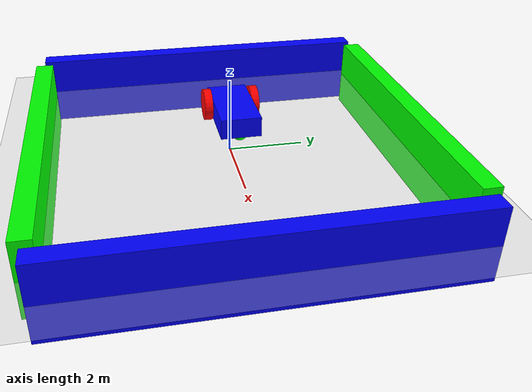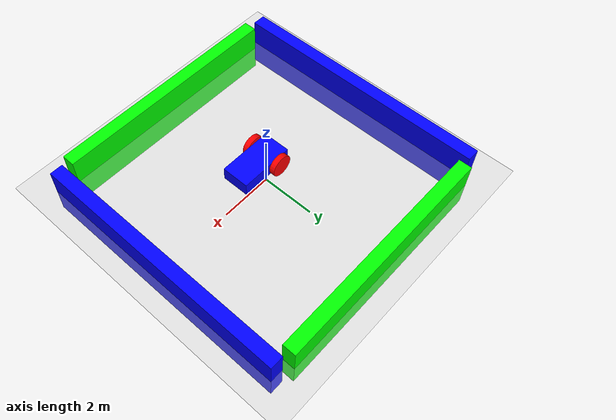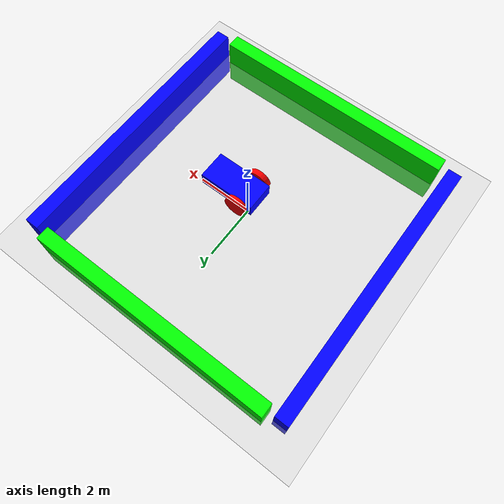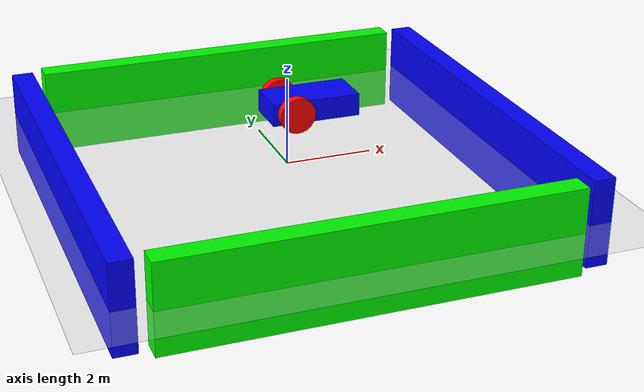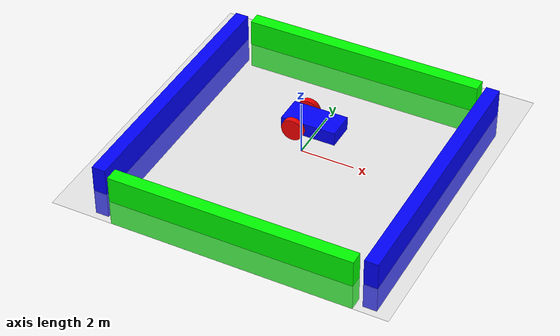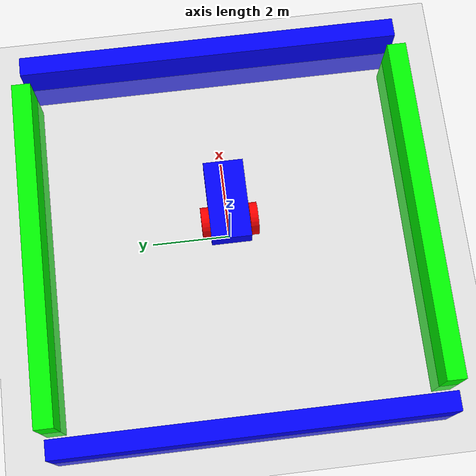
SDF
<?xml version="1.0" ?>
<sdf version="1.8">
    <world name="sensor_world">
        <physics name="1ms" type="ignored">
            <max_step_size>0.001</max_step_size>
            <real_time_factor>1.0</real_time_factor>
        </physics>
        <plugin
            filename="gz-sim-physics-system"
            name="gz::sim::systems::Physics">
        </plugin>
        <plugin
            filename="gz-sim-user-commands-system"
            name="gz::sim::systems::UserCommands">
        </plugin>
        <plugin
            filename="gz-sim-scene-broadcaster-system"
            name="gz::sim::systems::SceneBroadcaster">
        </plugin>
        <plugin
            filename="gz-sim-imu-system"
            name="gz::sim::systems::Imu">
        </plugin>
        <plugin
            filename="gz-sim-sensors-system"
            name="gz::sim::systems::Sensors">
            <render_engine>ogre2</render_engine>
        </plugin>
        <plugin
            filename="gz-sim-contact-system"
            name="gz::sim::systems::Contact">
        </plugin>
        <gui fullscreen="0">

          <!-- 3D scene -->
          <plugin filename="MinimalScene" name="3D View">
            <gz-gui>
              <title>3D View</title>
              <property type="bool" key="showTitleBar">false</property>
              <property type="string" key="state">docked</property>
            </gz-gui>

            <engine>ogre2</engine>
            <scene>scene</scene>
            <ambient_light>0.4 0.4 0.4</ambient_light>
            <background_color>0.8 0.8 0.8</background_color>
            <camera_pose>-6 0 6 0 0.5 0</camera_pose>
            <camera_clip>
              <near>0.25</near>
              <far>25000</far>
            </camera_clip>
          </plugin>

          <plugin filename="VisualizeLidar" name="Visualize Lidar"/>

                    <!-- World control -->
          <plugin filename="WorldControl" name="World control">
            <gz-gui>
              <title>World control</title>
              <property type="bool" key="showTitleBar">false</property>
              <property type="bool" key="resizable">false</property>
              <property type="double" key="height">72</property>
              <property type="double" key="width">121</property>
              <property type="double" key="z">1</property>

              <property type="string" key="state">floating</property>
              <anchors target="3D View">
                <line own="left" target="left"/>
                <line own="bottom" target="bottom"/>
              </anchors>
            </gz-gui>

            <play_pause>true</play_pause>
            <step>true</step>
            <start_paused>true</start_paused>
            <use_event>true</use_event>

          </plugin>

          <plugin filename="GzSceneManager" name="Scene Manager">
            <gz-gui>
              <property key="resizable" type="bool">false</property>
              <property key="width" type="double">5</property>
              <property key="height" type="double">5</property>
              <property key="state" type="string">floating</property>
              <property key="showTitleBar" type="bool">false</property>
            </gz-gui>
          </plugin>
          <plugin filename="InteractiveViewControl" name="Interactive view control">
            <gz-gui>
              <property key="resizable" type="bool">false</property>
              <property key="width" type="double">5</property>
              <property key="height" type="double">5</property>
              <property key="state" type="string">floating</property>
              <property key="showTitleBar" type="bool">false</property>
            </gz-gui>
          </plugin>
          <plugin filename="CameraTracking" name="Camera Tracking">
            <gz-gui>
              <property key="resizable" type="bool">false</property>
              <property key="width" type="double">5</property>
              <property key="height" type="double">5</property>
              <property key="state" type="string">floating</property>
              <property key="showTitleBar" type="bool">false</property>
            </gz-gui>
          </plugin>
          <plugin filename="MarkerManager" name="Marker manager">
            <gz-gui>
              <property key="resizable" type="bool">false</property>
              <property key="width" type="double">5</property>
              <property key="height" type="double">5</property>
              <property key="state" type="string">floating</property>
              <property key="showTitleBar" type="bool">false</property>
            </gz-gui>
          </plugin>
          <plugin filename="SelectEntities" name="Select Entities">
            <gz-gui>
              <anchors target="Select entities">
                <line own="right" target="right"/>
                <line own="top" target="top"/>
              </anchors>
              <property key="resizable" type="bool">false</property>
              <property key="width" type="double">5</property>
              <property key="height" type="double">5</property>
              <property key="state" type="string">floating</property>
              <property key="showTitleBar" type="bool">false</property>
            </gz-gui>
          </plugin>
          <plugin filename="VisualizationCapabilities" name="Visualization Capabilities">
            <gz-gui>
              <property key="resizable" type="bool">false</property>
              <property key="width" type="double">5</property>
              <property key="height" type="double">5</property>
              <property key="state" type="string">floating</property>
              <property key="showTitleBar" type="bool">false</property>
            </gz-gui>
          </plugin>

          <plugin filename="Spawn" name="Spawn Entities">
            <gz-gui>
              <anchors target="Select entities">
                <line own="right" target="right"/>
                <line own="top" target="top"/>
              </anchors>
              <property key="resizable" type="bool">false</property>
              <property key="width" type="double">5</property>
              <property key="height" type="double">5</property>
              <property key="state" type="string">floating</property>
              <property key="showTitleBar" type="bool">false</property>
            </gz-gui>
          </plugin>

          <!-- World statistics -->
          <plugin filename="WorldStats" name="World stats">
            <gz-gui>
              <title>World stats</title>
              <property type="bool" key="showTitleBar">false</property>
              <property type="bool" key="resizable">false</property>
              <property type="double" key="height">110</property>
              <property type="double" key="width">290</property>
              <property type="double" key="z">1</property>

              <property type="string" key="state">floating</property>
              <anchors target="3D View">
                <line own="right" target="right"/>
                <line own="bottom" target="bottom"/>
              </anchors>
            </gz-gui>

            <sim_time>true</sim_time>
            <real_time>true</real_time>
            <real_time_factor>true</real_time_factor>
            <iterations>true</iterations>
          </plugin>

          <!-- Insert simple shapes -->
          <plugin filename="Shapes" name="Shapes">
            <gz-gui>
              <property key="resizable" type="bool">false</property>
              <property key="x" type="double">0</property>
              <property key="y" type="double">0</property>
              <property key="width" type="double">250</property>
              <property key="height" type="double">50</property>
              <property key="state" type="string">floating</property>
              <property key="showTitleBar" type="bool">false</property>
              <property key="cardBackground" type="string">#666666</property>
            </gz-gui>
          </plugin>

          <!-- Insert lights -->
          <plugin filename="Lights" name="Lights">
            <gz-gui>
              <property key="resizable" type="bool">false</property>
              <property key="x" type="double">250</property>
              <property key="y" type="double">0</property>
              <property key="width" type="double">150</property>
              <property key="height" type="double">50</property>
              <property key="state" type="string">floating</property>
              <property key="showTitleBar" type="bool">false</property>
              <property key="cardBackground" type="string">#666666</property>
            </gz-gui>
          </plugin>

          <!-- Translate / rotate -->
          <plugin filename="TransformControl" name="Transform control">
            <gz-gui>
              <property key="resizable" type="bool">false</property>
              <property key="x" type="double">0</property>
              <property key="y" type="double">50</property>
              <property key="width" type="double">250</property>
              <property key="height" type="double">50</property>
              <property key="state" type="string">floating</property>
              <property key="showTitleBar" type="bool">false</property>
              <property key="cardBackground" type="string">#777777</property>
            </gz-gui>
          </plugin>

          <!-- Screenshot -->
          <plugin filename="Screenshot" name="Screenshot">
            <gz-gui>
              <property key="resizable" type="bool">false</property>
              <property key="x" type="double">250</property>
              <property key="y" type="double">50</property>
              <property key="width" type="double">50</property>
              <property key="height" type="double">50</property>
              <property key="state" type="string">floating</property>
              <property key="showTitleBar" type="bool">false</property>
              <property key="cardBackground" type="string">#777777</property>
            </gz-gui>
          </plugin>

          <!-- Video recorder -->
          <plugin filename="VideoRecorder" name="VideoRecorder">
            <gz-gui>
              <property key="resizable" type="bool">false</property>
              <property key="x" type="double">300</property>
              <property key="y" type="double">50</property>
              <property key="width" type="double">50</property>
              <property key="height" type="double">50</property>
              <property key="state" type="string">floating</property>
              <property key="showTitleBar" type="bool">false</property>
              <property key="cardBackground" type="string">#777777</property>
            </gz-gui>

            <record_video>
              <use_sim_time>true</use_sim_time>
              <lockstep>false</lockstep>
              <bitrate>4000000</bitrate>
            </record_video>
          </plugin>

          <!-- Inspector -->
          <plugin filename="ComponentInspector" name="Component inspector">
            <gz-gui>
              <property type="string" key="state">docked_collapsed</property>
            </gz-gui>
          </plugin>

          <!-- Entity tree -->
          <plugin filename="EntityTree" name="Entity tree">
            <gz-gui>
              <property type="string" key="state">docked_collapsed</property>
            </gz-gui>
          </plugin>

          <!-- View angle -->
          <plugin filename="ViewAngle" name="View angle">
            <gz-gui>
              <property type="string" key="state">docked_collapsed</property>
            </gz-gui>
          </plugin>

            <!-- KeyPublisher plugin-->
            <plugin filename="KeyPublisher" name="Key Publisher"/>

        </gui>

        <light type="directional" name="sun">
            <cast_shadows>true</cast_shadows>
            <pose>0 0 10 0 0 0</pose>
            <diffuse>0.8 0.8 0.8 1</diffuse>
            <specular>0.2 0.2 0.2 1</specular>
            <attenuation>
                <range>1000</range>
                <constant>0.9</constant>
                <linear>0.01</linear>
                <quadratic>0.001</quadratic>
            </attenuation>
            <direction>-0.5 0.1 -0.9</direction>
        </light>

        <model name="ground_plane">
            <static>true</static>
            <link name="link">
                <collision name="collision">
                <geometry>
                    <plane>
                    <normal>0 0 1</normal>
                    </plane>
                </geometry>
                </collision>
                <visual name="visual">
                <geometry>
                    <plane>
                    <normal>0 0 1</normal>
                    <size>100 100</size>
                    </plane>
                </geometry>
                <material>
                    <ambient>0.8 0.8 0.8 1</ambient>
                    <diffuse>0.8 0.8 0.8 1</diffuse>
                    <specular>0.8 0.8 0.8 1</specular>
                </material>
                </visual>
            </link>
        </model>

        <model name='vehicle_blue' canonical_link='chassis'>
            <pose relative_to='world'>0 0 1 0 0 0</pose>   <!--the pose is relative to the world by default-->

            <frame name="lidar_frame" attached_to='chassis'>
                <pose>0.8 0 0.5 0 0 0</pose>
            </frame>

            <link name='chassis'>
                <pose relative_to='__model__'>0.5 0 0.4 0 0 0</pose>
                <inertial> <!--inertial properties of the link mass, inertia matix-->
                    <mass>1.14395</mass>
                    <inertia>
                        <ixx>0.126164</ixx>
                        <ixy>0</ixy>
                        <ixz>0</ixz>
                        <iyy>0.416519</iyy>
                        <iyz>0</iyz>
                        <izz>0.481014</izz>
                    </inertia>
                </inertial>
                <visual name='visual'>
                    <geometry>
                        <box>
                            <size>2.0 1.0 0.5</size> <!--question: this size is in meter-->
                        </box>
                    </geometry>
                    <!--let's add color to our link-->
                    <material>
                        <ambient>0.0 0.0 1.0 1</ambient>
                        <diffuse>0.0 0.0 1.0 1</diffuse>
                        <specular>0.0 0.0 1.0 1</specular>
                    </material>
                </visual>
                <collision name='collision'> <!--todo: describe why we need the collision-->
                    <geometry>
                        <box>
                            <size>2.0 1.0 0.5</size>
                        </box>
                    </geometry>
                </collision>
                <sensor name="imu_sensor" type="imu">
                    <always_on>1</always_on>
                    <update_rate>1</update_rate>
                    <visualize>true</visualize>
                    <topic>imu</topic>
                    <gz_frame_id>vehicle_blue/chassis</gz_frame_id>
                </sensor>
                <sensor name='gpu_lidar' type='gpu_lidar'>"
                    <pose relative_to='lidar_frame'>0 0 0.2 0 0 0</pose>
                    <gz_frame_id>vehicle_blue/chassis</gz_frame_id>
                    <topic>lidar</topic>
                    <update_rate>10</update_rate>
                    <ray>
                        <scan>
                            <horizontal>
                                <samples>2000</samples>
                                <resolution>1</resolution>
                                <min_angle>-3.1415926536</min_angle>
                                <max_angle> 3.1415926536</max_angle>
                            </horizontal>

                            <vertical>
                                <samples>10</samples>
                                <resolution>1</resolution>
                                <min_angle>-0.122173048</min_angle>
                                <max_angle> 0.907571211</max_angle>
                            </vertical>
                        </scan>
                    <range>
                        <min>0.10</min>
                        <max>10.0</max>
                        <resolution>0.01</resolution>
                    </range>
                    <noise>
                        <type>gaussian</type>
                        <mean>0.0</mean>
                        <stddev>0.02</stddev>
                    </noise>
                    </ray>
                    <always_on>1</always_on>
                    <visualize>true</visualize>
                </sensor>
            </link>

            <!--let's build the left wheel-->
            <link name='left_wheel'>
                <pose relative_to="chassis">-0.5 0.6 0 -1.5707 0 0</pose> <!--angles are in radian-->
                <inertial>
                    <mass>2</mass>
                    <inertia>
                        <ixx>0.145833</ixx>
                        <ixy>0</ixy>
                        <ixz>0</ixz>
                        <iyy>0.145833</iyy>
                        <iyz>0</iyz>
                        <izz>0.125</izz>
                    </inertia>
                </inertial>
                <visual name='visual'>
                    <geometry>
                        <cylinder>
                            <radius>0.4</radius>
                            <length>0.2</length>
                        </cylinder>
                    </geometry>
                    <material>
                        <ambient>1.0 0.0 0.0 1</ambient>
                        <diffuse>1.0 0.0 0.0 1</diffuse>
                        <specular>1.0 0.0 0.0 1</specular>
                    </material>
                </visual>
                <collision name='collision'>
                    <geometry>
                        <cylinder>
                            <radius>0.4</radius>
                            <length>0.2</length>
                        </cylinder>
                    </geometry>
                </collision>
            </link>

            <!--copy and paste for right wheel but change position-->
            <link name='right_wheel'>
                <pose relative_to="chassis">-0.5 -0.6 0 -1.5707 0 0</pose> <!--angles are in radian-->
                <inertial>
                    <mass>1</mass>
                    <inertia>
                        <ixx>0.145833</ixx>
                        <ixy>0</ixy>
                        <ixz>0</ixz>
                        <iyy>0.145833</iyy>
                        <iyz>0</iyz>
                        <izz>0.125</izz>
                    </inertia>
                </inertial>
                <visual name='visual'>
                    <geometry>
                        <cylinder>
                            <radius>0.4</radius>
                            <length>0.2</length>
                        </cylinder>
                    </geometry>
                    <material>
                        <ambient>1.0 0.0 0.0 1</ambient>
                        <diffuse>1.0 0.0 0.0 1</diffuse>
                        <specular>1.0 0.0 0.0 1</specular>
                    </material>
                </visual>
                <collision name='collision'>
                    <geometry>
                        <cylinder>
                            <radius>0.4</radius>
                            <length>0.2</length>
                        </cylinder>
                    </geometry>
                </collision>
            </link>

            <frame name="caster_frame" attached_to='chassis'>
                <pose>0.8 0 -0.2 0 0 0</pose>
            </frame>

            <!--caster wheel-->
            <link name='caster'>
                <pose relative_to='caster_frame'/>
                <inertial>
                    <mass>1</mass>
                    <inertia>
                        <ixx>0.1</ixx>
                        <ixy>0</ixy>
                        <ixz>0</ixz>
                        <iyy>0.1</iyy>
                        <iyz>0</iyz>
                        <izz>0.1</izz>
                    </inertia>
                </inertial>
                <visual name='visual'>
                    <geometry>
                        <sphere>
                            <radius>0.2</radius>
                        </sphere>
                    </geometry>
                    <material>
                        <ambient>0.0 1 0.0 1</ambient>
                        <diffuse>0.0 1 0.0 1</diffuse>
                        <specular>0.0 1 0.0 1</specular>
                    </material>
                </visual>
                <collision name='collision'>
                    <geometry>
                        <sphere>
                            <radius>0.2</radius>
                        </sphere>
                    </geometry>
                </collision>
            </link>

            <!--connecting these links together using joints-->
            <joint name='left_wheel_joint' type='revolute'> <!--continous joint is not supported yet-->
                <pose relative_to='left_wheel'/>
                <parent>chassis</parent>
                <child>left_wheel</child>
                <axis>
                    <xyz expressed_in='__model__'>0 1 0</xyz> <!--can be descired to any frame or even arbitrary frames-->
                    <limit>
                        <lower>-1.79769e+308</lower>    <!--negative infinity-->
                        <upper>1.79769e+308</upper>     <!--positive infinity-->
                    </limit>
                </axis>
            </joint>

            <joint name='right_wheel_joint' type='revolute'>
                <pose relative_to='right_wheel'/>
                <parent>chassis</parent>
                <child>right_wheel</child>
                <axis>
                    <xyz expressed_in='__model__'>0 1 0</xyz>
                    <limit>
                        <lower>-1.79769e+308</lower>    <!--negative infinity-->
                        <upper>1.79769e+308</upper>     <!--positive infinity-->
                    </limit>
                </axis>
            </joint>

            <!--different type of joints ball joint--> <!--defult value is the child-->
            <joint name='caster_wheel' type='ball'>
                <parent>chassis</parent>
                <child>caster</child>
            </joint>

            <!--diff drive plugin-->
            <plugin
                filename="gz-sim-diff-drive-system"
                name="gz::sim::systems::DiffDrive">
                <left_joint>left_wheel_joint</left_joint>
                <right_joint>right_wheel_joint</right_joint>
                <wheel_separation>1.2</wheel_separation>
                <wheel_radius>0.4</wheel_radius>
                <odom_publish_frequency>1</odom_publish_frequency>
                <topic>cmd_vel</topic>
            </plugin>
        </model>

        <!--wall-->
        <!--wall 1-->
        <model name='wall_1'>
            <static>true</static>
            <pose>5 0 0 0 0 0</pose><!--pose relative to the world-->
            <link name='box'>
                <pose/>
                <inertial> <!--inertial properties of the link mass, inertia matix-->
                    <mass>1.14395</mass>
                    <inertia>
                        <ixx>9.532917</ixx>
                        <ixy>0</ixy>
                        <ixz>0</ixz>
                        <iyy>0.023832</iyy>
                        <iyz>0</iyz>
                        <izz>9.556749</izz>
                    </inertia>
                </inertial>
                <visual name='visual'>
                    <geometry>
                        <box>
                            <size>0.5 10.0 2.0</size>
                        </box>
                    </geometry>
                    <!--let's add color to our link-->
                    <material>
                        <ambient>0.0 0.0 1.0 1</ambient>
                        <diffuse>0.0 0.0 1.0 1</diffuse>
                        <specular>0.0 0.0 1.0 1</specular>
                    </material>
                </visual>
                <collision name='collision'> <!--todo: describe why we need the collision-->
                    <geometry>
                        <box>
                            <size>0.5 10.0 2.0</size>
                        </box>
                    </geometry>
                </collision>
                <sensor name='sensor_contact' type='contact'>
                    <contact>
                        <collision>collision</collision>
                    </contact>
                </sensor>
            </link>
            <plugin filename="gz-sim-touchplugin-system"
                    name="gz::sim::systems::TouchPlugin">
                <target>vehicle_blue</target>
                <namespace>wall</namespace>
                <time>0.001</time>
                <enabled>true</enabled>
            </plugin>
        </model>

        <model name='wall_2'>
            <static>true</static>
            <pose>-5 0 0 0 0 0</pose><!--pose relative to the world-->
            <link name='box'>
                <pose/>
                <inertial> <!--inertial properties of the link mass, inertia matix-->
                    <mass>1.14395</mass>
                    <inertia>
                        <ixx>9.532917</ixx>
                        <ixy>0</ixy>
                        <ixz>0</ixz>
                        <iyy>0.023832</iyy>
                        <iyz>0</iyz>
                        <izz>9.556749</izz>
                    </inertia>
                </inertial>
                <visual name='visual'>
                    <geometry>
                        <box>
                            <size>0.5 10.0 2.0</size>
                        </box>
                    </geometry>
                    <!--let's add color to our link-->
                    <material>
                        <ambient>0.0 0.0 1.0 1</ambient>
                        <diffuse>0.0 0.0 1.0 1</diffuse>
                        <specular>0.0 0.0 1.0 1</specular>
                    </material>
                </visual>
                <collision name='collision'> <!--todo: describe why we need the collision-->
                    <geometry>
                        <box>
                            <size>0.5 10.0 2.0</size>
                        </box>
                    </geometry>
                </collision>
                <sensor name='sensor_contact' type='contact'>
                    <contact>
                        <collision>collision</collision>
                    </contact>
                </sensor>
            </link>
            <plugin filename="gz-sim-touchplugin-system"
                    name="gz::sim::systems::TouchPlugin">
                <target>vehicle_blue</target>
                <namespace>wall</namespace>
                <time>0.001</time>
                <enabled>true</enabled>
            </plugin>
        </model>

        <model name='wall_3'>
            <static>true</static>
            <pose>0 5 0 0 0 0</pose><!--pose relative to the world-->
            <link name='box'>
                <pose/>
                <inertial> <!--inertial properties of the link mass, inertia matix-->
                    <mass>1.14395</mass>
                    <inertia>
                        <ixx>9.532917</ixx>
                        <ixy>0</ixy>
                        <ixz>0</ixz>
                        <iyy>0.023832</iyy>
                        <iyz>0</iyz>
                        <izz>9.556749</izz>
                    </inertia>
                </inertial>
                <visual name='visual'>
                    <geometry>
                        <box>
                            <size>9.0 0.5 2.0</size>
                        </box>
                    </geometry>
                    <!--let's add color to our link-->
                    <material>
                        <ambient>0.0 1.0 0.0 1</ambient>
                        <diffuse>0.0 1.0 0.0 1</diffuse>
                        <specular>0.0 1.0 0.0 1</specular>
                    </material>
                </visual>
                <collision name='collision'> <!--todo: describe why we need the collision-->
                    <geometry>
                        <box>
                            <size>9.0 0.5 2.0</size>
                        </box>
                    </geometry>
                </collision>
                <sensor name='sensor_contact' type='contact'>
                    <contact>
                        <collision>collision</collision>
                    </contact>
                </sensor>
            </link>
            <plugin filename="gz-sim-touchplugin-system"
                    name="gz::sim::systems::TouchPlugin">
                <target>vehicle_blue</target>
                <namespace>wall</namespace>
                <time>0.001</time>
                <enabled>true</enabled>
            </plugin>
        </model>

        <model name='wall_4'>
            <static>true</static>
            <pose>0 -5 0 0 0 0</pose><!--pose relative to the world-->
            <link name='box'>
                <pose/>
                <inertial> <!--inertial properties of the link mass, inertia matix-->
                    <mass>1.14395</mass>
                    <inertia>
                        <ixx>9.532917</ixx>
                        <ixy>0</ixy>
                        <ixz>0</ixz>
                        <iyy>0.023832</iyy>
                        <iyz>0</iyz>
                        <izz>9.556749</izz>
                    </inertia>
                </inertial>
                <visual name='visual'>
                    <geometry>
                        <box>
                            <size>9.0 0.5 2.0</size>
                        </box>
                    </geometry>
                    <!--let's add color to our link-->
                    <material>
                        <ambient>0.0 1.0 0.0 1</ambient>
                        <diffuse>0.0 1.0 0.0 1</diffuse>
                        <specular>0.0 1.0 0.0 1</specular>
                    </material>
                </visual>
                <collision name='collision'> <!--todo: describe why we need the collision-->
                    <geometry>
                        <box>
                            <size>9.0 0.5 2.0</size>
                        </box>
                    </geometry>
                </collision>
                <sensor name='sensor_contact' type='contact'>
                    <contact>
                        <collision>collision</collision>
                    </contact>
                </sensor>
            </link>
            <plugin filename="gz-sim-touchplugin-system"
                    name="gz::sim::systems::TouchPlugin">
                <target>vehicle_blue</target>
                <namespace>wall</namespace>
                <time>0.001</time>
                <enabled>true</enabled>
            </plugin>
        </model>

        <!-- Moving Left-->
        <plugin filename="gz-sim-triggered-publisher-system"
                name="gz::sim::systems::TriggeredPublisher">
            <input type="gz.msgs.Int32" topic="/keyboard/keypress">
                <match field="data">16777234</match>
            </input>
            <output type="gz.msgs.Twist" topic="/cmd_vel">
                linear: {x: 0.0}, angular: {z: 0.5}
            </output>
        </plugin>
        <!-- Moving Forward-->
        <plugin filename="gz-sim-triggered-publisher-system"
                name="gz::sim::systems::TriggeredPublisher">
            <input type="gz.msgs.Int32" topic="/keyboard/keypress">
                <match field="data">16777235</match>
            </input>
            <output type="gz.msgs.Twist" topic="/cmd_vel">
                linear: {x: 0.5}, angular: {z: 0.0}
            </output>
        </plugin>
        <!-- Moving Right-->
        <plugin filename="gz-sim-triggered-publisher-system"
                name="gz::sim::systems::TriggeredPublisher">
            <input type="gz.msgs.Int32" topic="/keyboard/keypress">
                <match field="data">16777236</match>
            </input>
            <output type="gz.msgs.Twist" topic="/cmd_vel">
                linear: {x: 0.0}, angular: {z: -0.5}
            </output>
        </plugin>
        <!-- Moving Backward-->
        <plugin filename="gz-sim-triggered-publisher-system"
                name="gz::sim::systems::TriggeredPublisher">
            <input type="gz.msgs.Int32" topic="/keyboard/keypress">
                <match field="data">16777237</match>
            </input>
            <output type="gz.msgs.Twist" topic="/cmd_vel">
                linear: {x: -0.5}, angular: {z: 0.0}
            </output>
        </plugin>

        <!--stop when hit the wall-->
        <plugin filename="gz-sim-triggered-publisher-system"
                name="gz::sim::systems::TriggeredPublisher">
            <input type="gz.msgs.Boolean" topic="/wall/touched">
                <match>data: true</match>
            </input>
            <output type="gz.msgs.Twist" topic="/cmd_vel">
                linear: {x: 0.0}, angular: {z: 0.0}
            </output>
        </plugin>
    </world>
</sdf>
